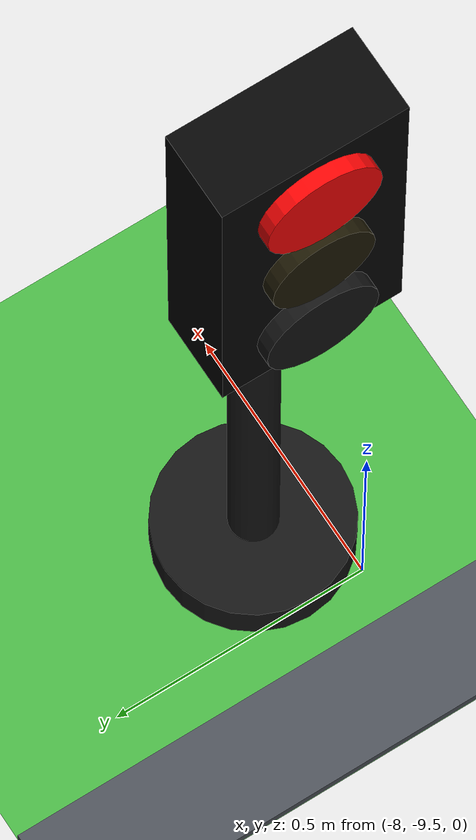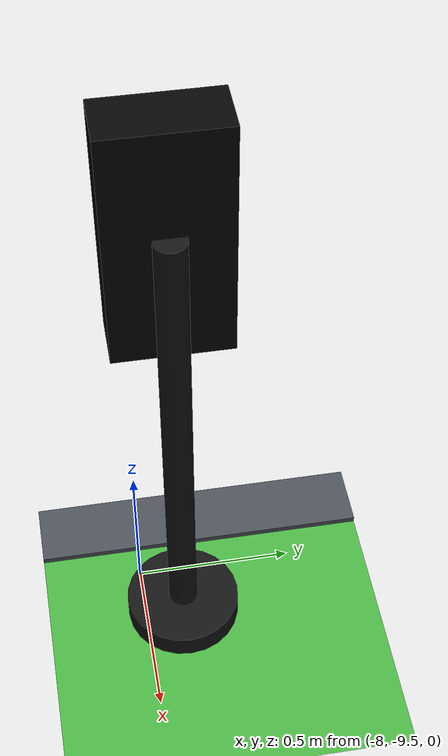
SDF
<sdf version="1.10">
 <world name="city_second">
  <model name="ground_plane">
   <static>true</static>
   <link name="link">
    <collision name="collision">
     <geometry><plane><normal>0 0 1</normal><size>300 300</size></plane></geometry>
    </collision>
    <visual name="visual">
     <geometry><plane><normal>0 0 1</normal><size>300 300</size></plane></geometry>
     <material>
      <ambient>0.280000001 0.689999998 0.25999999 1</ambient>
      <diffuse>0.280000001 0.689999998 0.25999999 1</diffuse>
      <specular>0.0299999993 0.0299999993 0.0299999993 1</specular>
     </material>
    </visual>
    <inertial>
     <mass>1</mass>
     <inertia><ixx>1</ixx><ixy>0</ixy><ixz>0</ixz><iyy>1</iyy><iyz>0</iyz><izz>1</izz></inertia>
    </inertial>
   </link>
  </model>
  <model name="road_v_2_1">
   <static>true</static>
   <pose>-12.095599999999999 -0.169792 0.01 0 0 0</pose>
   <link name="link">
    <collision name="collision"><geometry><box><size>8 84 0.02</size></box></geometry></collision>
    <visual name="visual">
     <geometry><box><size>8 84 0.02</size></box></geometry>
     <material>
      <ambient>0.289999992 0.310000002 0.340000004 1</ambient>
      <diffuse>0.289999992 0.310000002 0.340000004 1</diffuse>
      <specular>0.0299999993 0.0299999993 0.0299999993 1</specular>
     </material>
    </visual>
    <inertial>
     <mass>1</mass>
     <inertia><ixx>1</ixx><ixy>0</ixy><ixz>0</ixz><iyy>1</iyy><iyz>0</iyz><izz>1</izz></inertia>
    </inertial>
   </link>
  </model>
  <model name="simple_traffic_light_red_west_1">
   <static>true</static>
   <pose>-7.8423600000000002 -9.3772000000000002 -5.5511151231257827e-17 0 0 1.5708000000000013</pose>
   <link name="base">
    <pose>0 0 0.040000000000000001 0 0 0</pose>
    <collision name="collision">
     <geometry>
      <cylinder><radius>0.17999999999999999</radius><length>0.080000000000000002</length></cylinder>
     </geometry>
    </collision>
    <visual name="visual">
     <geometry>
      <cylinder><radius>0.17999999999999999</radius><length>0.080000000000000002</length></cylinder>
     </geometry>
     <material>
      <ambient>0.0799999982 0.0799999982 0.0799999982 1</ambient>
      <diffuse>0.0799999982 0.0799999982 0.0799999982 1</diffuse>
      <specular>0.150000006 0.150000006 0.150000006 1</specular>
      <emissive>0 0 0 1</emissive>
     </material>
    </visual>
    <inertial>
     <mass>1</mass>
     <inertia><ixx>1</ixx><ixy>0</ixy><ixz>0</ixz><iyy>1</iyy><iyz>0</iyz><izz>1</izz></inertia>
    </inertial>
   </link>
   <link name="pole">
    <pose>5.3290705182007514e-15 -5.3290705182007514e-15 0.80000000000000004 0 0 3.1086244689504383e-15</pose>
    <collision name="collision">
     <geometry>
      <cylinder><radius>0.044999999999999998</radius><length>1.6000000000000001</length></cylinder>
     </geometry>
    </collision>
    <visual name="visual">
     <geometry>
      <cylinder><radius>0.044999999999999998</radius><length>1.6000000000000001</length></cylinder>
     </geometry>
     <material>
      <ambient>0.0799999982 0.0799999982 0.0799999982 1</ambient>
      <diffuse>0.0799999982 0.0799999982 0.0799999982 1</diffuse>
      <specular>0.150000006 0.150000006 0.150000006 1</specular>
      <emissive>0 0 0 1</emissive>
     </material>
    </visual>
    <inertial>
     <mass>1</mass>
     <inertia><ixx>1</ixx><ixy>0</ixy><ixz>0</ixz><iyy>1</iyy><iyz>0</iyz><izz>1</izz></inertia>
    </inertial>
   </link>
   <link name="signal_box">
    <pose>-3.5527136788005009e-15 0.090000000000001634 1.5500000000000003 0 0 3.1086244689504383e-15</pose>
    <collision name="collision">
     <geometry><box><size>0.34000000000000002 0.16 0.71999999999999997</size></box></geometry>
    </collision>
    <visual name="visual">
     <geometry><box><size>0.34000000000000002 0.16 0.71999999999999997</size></box></geometry>
     <material>
      <ambient>0.0199999996 0.0199999996 0.0199999996 1</ambient>
      <diffuse>0.0199999996 0.0199999996 0.0199999996 1</diffuse>
      <specular>0.150000006 0.150000006 0.150000006 1</specular>
      <emissive>0 0 0 1</emissive>
     </material>
    </visual>
    <inertial>
     <mass>1</mass>
     <inertia><ixx>1</ixx><ixy>0</ixy><ixz>0</ixz><iyy>1</iyy><iyz>0</iyz><izz>1</izz></inertia>
    </inertial>
   </link>
   <link name="red_lens">
    <pose>1.4210854715202004e-14 0.18100000000000271 1.7800000000000002 1.5707963268000003 -1.5700924586637423e-16 -7.850462293422882e-16</pose>
    <collision name="collision">
     <geometry><cylinder><radius>0.105</radius><length>0.035000000000000003</length></cylinder></geometry>
    </collision>
    <visual name="visual">
     <geometry><cylinder><radius>0.105</radius><length>0.035000000000000003</length></cylinder></geometry>
     <material>
      <ambient>1 0.0199999996 0.0199999996 1</ambient>
      <diffuse>1 0.0199999996 0.0199999996 1</diffuse>
      <specular>0.150000006 0.150000006 0.150000006 1</specular>
      <emissive>1 0.0199999996 0.0199999996 1</emissive>
     </material>
    </visual>
    <inertial>
     <mass>1</mass>
     <inertia><ixx>1</ixx><ixy>0</ixy><ixz>0</ixz><iyy>1</iyy><iyz>0</iyz><izz>1</izz></inertia>
    </inertial>
   </link>
   <link name="yellow_lens">
    <pose>1.7763568394002505e-15 0.18200000000000038 1.5500000000000003 1.5707963268000003 -1.5700924586637423e-16 -7.850462293422882e-16</pose>
    <collision name="collision">
     <geometry>
      <cylinder><radius>0.095000000000000001</radius><length>0.035000000000000003</length></cylinder>
     </geometry>
    </collision>
    <visual name="visual">
     <geometry>
      <cylinder><radius>0.095000000000000001</radius><length>0.035000000000000003</length></cylinder>
     </geometry>
     <material>
      <ambient>0.119999997 0.100000001 0.0199999996 1</ambient>
      <diffuse>0.119999997 0.100000001 0.0199999996 1</diffuse>
      <specular>0.150000006 0.150000006 0.150000006 1</specular>
      <emissive>0 0 0 1</emissive>
     </material>
    </visual>
    <inertial>
     <mass>1</mass>
     <inertia><ixx>1</ixx><ixy>0</ixy><ixz>0</ixz><iyy>1</iyy><iyz>0</iyz><izz>1</izz></inertia>
    </inertial>
   </link>
   <link name="green_lens">
    <pose>3.5527136788005009e-15 0.18300000000000161 1.3199999999999998 1.5707963268000003 -1.5700924586637423e-16 -7.850462293422882e-16</pose>
    <collision name="collision">
     <geometry><cylinder><radius>0.105</radius><length>0.035000000000000003</length></cylinder></geometry>
    </collision>
    <visual name="visual">
     <geometry><cylinder><radius>0.105</radius><length>0.035000000000000003</length></cylinder></geometry>
     <material>
      <ambient>0.0799999982 0.0799999982 0.0799999982 1</ambient>
      <diffuse>0.0799999982 0.0799999982 0.0799999982 1</diffuse>
      <specular>0.150000006 0.150000006 0.150000006 1</specular>
      <emissive>0 0 0 1</emissive>
     </material>
    </visual>
    <inertial>
     <mass>1</mass>
     <inertia><ixx>1</ixx><ixy>0</ixy><ixz>0</ixz><iyy>1</iyy><iyz>0</iyz><izz>1</izz></inertia>
    </inertial>
   </link>
  </model>
 </world>
</sdf>
